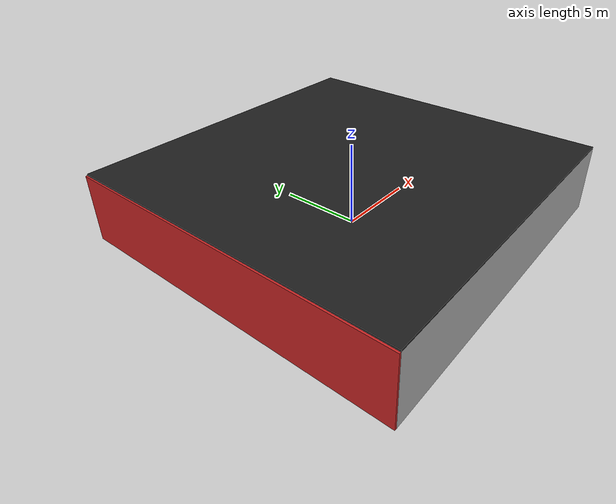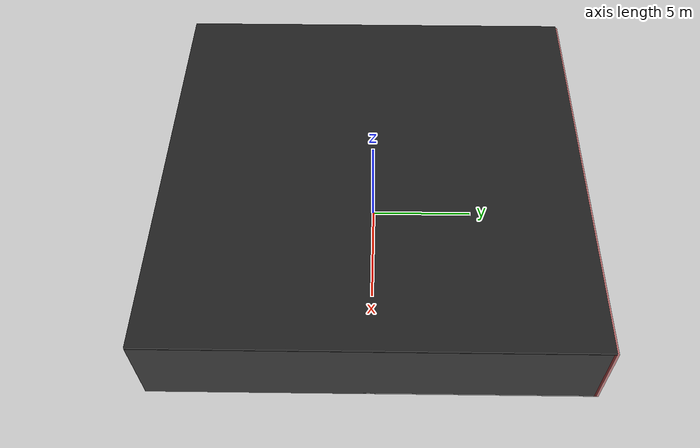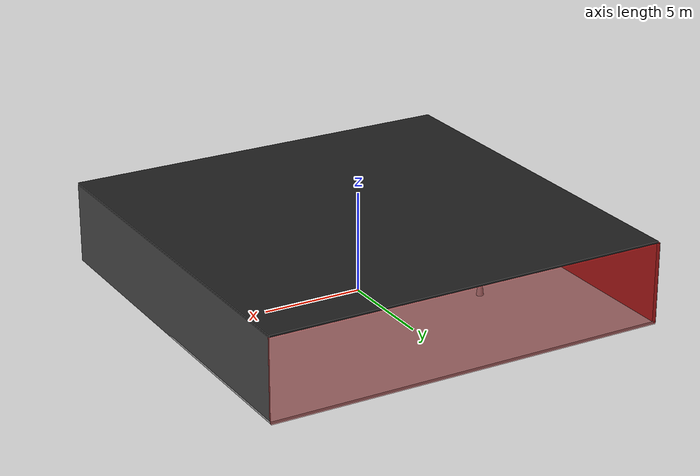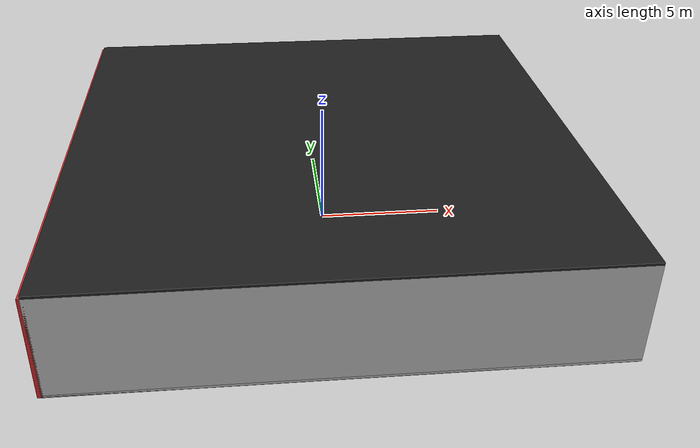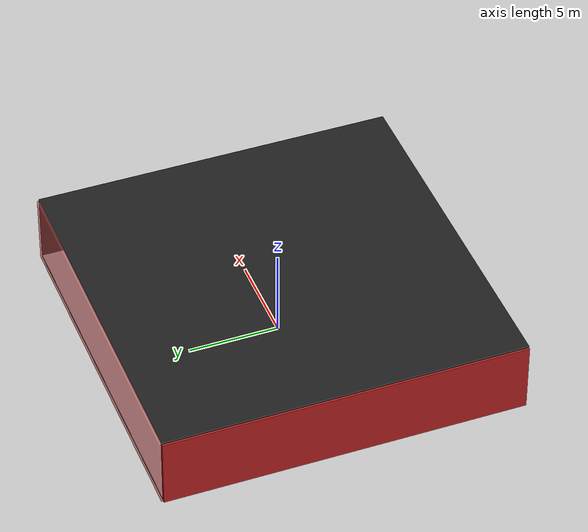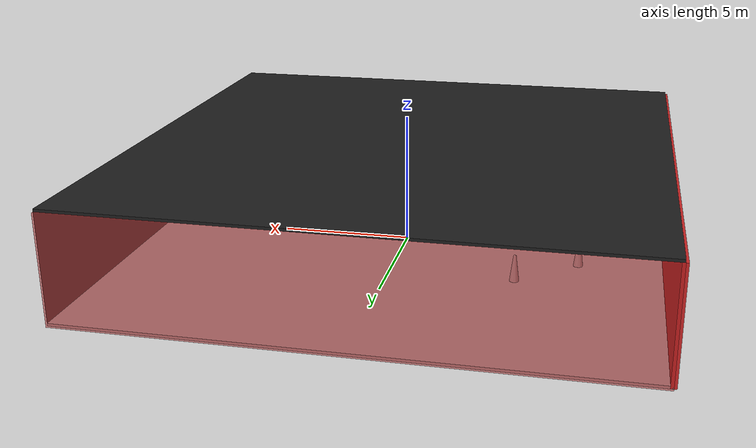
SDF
<sdf version="1.4">
 <world name="default">
  <physics type="ode">
   <max_step_size>0.001</max_step_size>
   <real_time_factor>1</real_time_factor>
   <real_time_update_rate>1000</real_time_update_rate>
   <gravity>0 0 -9.8</gravity>
  </physics>
  <scene><ambient>0.4 0.4 0.4 1</ambient><background>0.7 0.7 0.7 1</background><shadows>1</shadows></scene>
  <model name="Surrounding">
   <static>1</static>
   <link name="Ceiling">
    <collision name="Ceiling_Collision"><geometry><box><size>20 20 0.1</size></box></geometry></collision>
    <visual name="Ceiling_Visual">
     <geometry><box><size>20 20 0.1</size></box></geometry>
     <material>
      <script><uri>file://media/materials/scripts/gazebo.material</uri><name>Gazebo/Black</name></script>
     </material>
    </visual>
    <pose>0 0 4.05 0 0 0</pose>
   </link>
   <link name="Wall_South">
    <collision name="Wall_South_Collision">
     <geometry><box><size>20 0 4</size></box></geometry>
     <pose>0 0 2 0 -0 0</pose>
    </collision>
    <visual name="Wall_South_Visual">
     <pose>0 0 2 0 -0 0</pose>
     <geometry><box><size>20 0 4</size></box></geometry>
     <material>
      <script><uri>file://media/materials/scripts/gazebo.material</uri><name>Gazebo/CloudySky</name></script>
     </material>
    </visual>
    <velocity_decay><linear>0</linear><angular>0</angular></velocity_decay>
    <pose>0 -10 0 0 -0 0</pose>
   </link>
   <link name="Wall_East">
    <collision name="Wall_21_Collision">
     <geometry><box><size>20 0 4</size></box></geometry>
     <pose>0 0 2 0 -0 0</pose>
    </collision>
    <visual name="Wall_21_Visual">
     <pose>0 0 2 0 -0 0</pose>
     <geometry><box><size>20 0 4</size></box></geometry>
     <material>
      <script><uri>file://media/materials/scripts/gazebo.material</uri><name>Gazebo/Road</name></script>
     </material>
    </visual>
    <velocity_decay><linear>0</linear><angular>0</angular></velocity_decay>
    <pose>10 0 0 0 -0 1.5708</pose>
   </link>
   <link name="Wall_North">
    <collision name="Wall_22_Collision">
     <geometry><box><size>20 0.2 4</size></box></geometry>
     <pose>0 0 2 0 -0 0</pose>
    </collision>
    <visual name="Wall_22_Visual">
     <pose>0 0 2 0 -0 0</pose>
     <geometry><box><size>20 0.2 4</size></box></geometry>
     <material>
      <script><uri>file://media/materials/scripts/gazebo.material</uri><name>Gazebo/RedTransparent</name></script>
     </material>
    </visual>
    <velocity_decay><linear>0</linear><angular>0</angular></velocity_decay>
    <pose>0 10 0 0 -0 0</pose>
   </link>
   <link name="Wall_West">
    <collision name="Wall_23_Collision">
     <geometry><box><size>20 0.2 4</size></box></geometry>
     <pose>0 0 2 0 -0 0</pose>
    </collision>
    <visual name="Wall_23_Visual">
     <pose>0 0 2 0 -0 0</pose>
     <geometry><box><size>20 0.2 4</size></box></geometry>
     <material>
      <script><uri>file://media/materials/scripts/gazebo.material</uri><name>Gazebo/RedGlow</name></script>
     </material>
    </visual>
    <velocity_decay><linear>0</linear><angular>0</angular></velocity_decay>
    <pose>-10 0 0 0 0 -1.5708</pose>
   </link>
   <link name="Ground_link">
    <collision name="collision">
     <pose>0 0 .05 0 -0 0</pose>
     <geometry><box><size>20 20 0.1</size></box></geometry>
    </collision>
    <visual name="visual">
     <pose>0 0 .05 0 -0 0</pose>
     <geometry><box><size>20 20 0.1</size></box></geometry>
     <material>
      <script><uri>file://media/materials/scripts/gazebo.material</uri><name>Gazebo/CloudySky</name></script>
     </material>
    </visual>
   </link>
   <static>1</static>
  </model>
  <spherical_coordinates>
   <surface_model>EARTH_WGS84</surface_model>
   <latitude_deg>0</latitude_deg>
   <longitude_deg>0</longitude_deg>
   <elevation>0</elevation>
   <heading_deg>0</heading_deg>
  </spherical_coordinates>
  <light name="lightball_0" type="diffuse">
   <diffuse>0.8 0.8 0.8 1</diffuse>
   <specular>0.2 0.2 0.2 1</specular>
   <attenuation>
    <range>100</range>
    <constant>0.7</constant>
    <linear>0.01</linear>
    <quadratic>0.001</quadratic>
   </attenuation>
   <direction>-0.5 0.1 -0.9</direction>
   <pose>-5.15535487486 7.94258639405 2.34866198588 0 0 0</pose>
  </light>
  <light name="lightball_1" type="diffuse">
   <diffuse>0.8 0.8 0.8 1</diffuse>
   <specular>0.2 0.2 0.2 1</specular>
   <attenuation>
    <range>100</range>
    <constant>0.7</constant>
    <linear>0.01</linear>
    <quadratic>0.001</quadratic>
   </attenuation>
   <direction>-0.5 0.1 -0.9</direction>
   <pose>9.34947452503 9.01438978584 2.15628171915 0 0 0</pose>
  </light>
  <light name="lightball_2" type="diffuse">
   <diffuse>0.8 0.8 0.8 1</diffuse>
   <specular>0.2 0.2 0.2 1</specular>
   <attenuation>
    <range>100</range>
    <constant>0.7</constant>
    <linear>0.01</linear>
    <quadratic>0.001</quadratic>
   </attenuation>
   <direction>-0.5 0.1 -0.9</direction>
   <pose>-4.64600780072 -9.24779956371 3.57437457082 0 0 0</pose>
  </light>
  <light name="lightball_3" type="diffuse">
   <diffuse>0.8 0.8 0.8 1</diffuse>
   <specular>0.2 0.2 0.2 1</specular>
   <attenuation>
    <range>100</range>
    <constant>0.7</constant>
    <linear>0.01</linear>
    <quadratic>0.001</quadratic>
   </attenuation>
   <direction>-0.5 0.1 -0.9</direction>
   <pose>9.87627411527 3.49834569116 2.99779971917 0 0 0</pose>
  </light>
  <light name="lightball_4" type="diffuse">
   <diffuse>0.8 0.8 0.8 1</diffuse>
   <specular>0.2 0.2 0.2 1</specular>
   <attenuation>
    <range>100</range>
    <constant>0.7</constant>
    <linear>0.01</linear>
    <quadratic>0.001</quadratic>
   </attenuation>
   <direction>-0.5 0.1 -0.9</direction>
   <pose>-6.64981476229 -7.05015248947 3.6716180409 0 0 0</pose>
  </light>
  <include>
   <uri>model://construction_cone</uri>
   <pose>-6.82479960846 1.65151664665 0 0 0 2.61432839842</pose>
  </include>
  <include>
   <uri>model://robocup_3Dsim_goal</uri>
   <pose>-3.64687975694 -8.13460036757 0 0 0 2.67687040008</pose>
  </include>
  <include>
   <uri>model://construction_cone</uri>
   <pose>-4.6425877196 3.49395213879 0 0 0 3.08622979753</pose>
  </include>
  <include><uri>model://cabinet</uri><pose>0.667921887178 -6.93799238186 0 0 0 2.48989441166</pose></include>
  <include>
   <uri>model://textured_shapes</uri>
   <pose>1.68888784764 -2.63928427247 0 0 0 1.70396496791</pose>
  </include>
 </world>
</sdf>

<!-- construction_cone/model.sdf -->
<sdf version="1.5">
  <model name="Construction Cone">
    <link name="link">
      <collision name="collision">
        <geometry>
          <mesh>
            <scale>10 10 10</scale>
            <uri>file://isr-testbed/construction_cone/meshes/construction_cone.dae</uri>
          </mesh>
        </geometry>
      </collision>
      <visual name="visual">
        <geometry>
          <mesh>
            <scale>10 10 10</scale>
            <uri>file://isr-testbed/construction_cone/meshes/construction_cone.dae</uri>
          </mesh>
        </geometry>
      </visual>
    </link>
  </model>
</sdf>

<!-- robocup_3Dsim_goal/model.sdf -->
<sdf version="1.5">
  <model name="robocup_3d_goal">
    <static>true</static>
    <link name="left_post">
      <pose>0 1.05 0.45 0 0 0</pose>
      <collision name="collision">
        <geometry>
          <cylinder>
            <radius>0.05</radius>
            <length>0.9</length>
          </cylinder>
        </geometry>
      </collision>
      <visual name="visual">
        <geometry>
          <cylinder>
            <radius>0.05</radius>
            <length>0.9</length>
          </cylinder>
        </geometry>
        <material>
          <script>
            <uri>file://media/materials/scripts/gazebo.material</uri>
            <name>Gazebo/ZincYellow</name>
          </script>
        </material>
      </visual>
    </link>
    <link name="left_support_horiz_lower">
      <pose>0.30 1.05 0.01 0 0 0</pose>
      <collision name="collision">
        <geometry>
          <box>
            <size>0.50 0.02 0.02</size>
          </box>
        </geometry>
      </collision>
      <visual name="visual">
        <geometry>
          <box>
            <size>0.50 0.02 0.02</size>
          </box>
        </geometry>
        <material>
          <script>
            <uri>file://media/materials/scripts/gazebo.material</uri>
            <name>Gazebo/White</name>
          </script>
        </material>
      </visual>
    </link>
    <link name="left_support_horiz_upper">
      <pose>0.30 1.05 0.79 0 0 0</pose>
      <collision name="collision">
        <geometry>
          <box>
            <size>0.50 0.02 0.02</size>
          </box>
        </geometry>
      </collision>
      <visual name="visual">
        <geometry>
          <box>
            <size>0.50 0.02 0.02</size>
          </box>
        </geometry>
        <material>
          <script>
            <uri>file://media/materials/scripts/gazebo.material</uri>
            <name>Gazebo/White</name>
          </script>
        </material>
      </visual>
    </link>
    <link name="left_support_vertical">
      <pose>0.56 1.05 0.4 0 1.5708 0</pose>
      <collision name="collision">
        <geometry>
          <box>
            <size>0.80 0.02 0.02</size>
          </box>
        </geometry>
      </collision>
      <visual name="visual">
        <geometry>
          <box>
            <size>0.80 0.02 0.02</size>
          </box>
        </geometry>
        <material>
          <script>
            <uri>file://media/materials/scripts/gazebo.material</uri>
            <name>Gazebo/White</name>
          </script>
        </material>
      </visual>
    </link>
    <link name="right_support_horiz_lower">
      <pose>0.30 -1.05 0.01 0 0 0</pose>
      <collision name="collision">
        <geometry>
          <box>
            <size>0.50 0.02 0.02</size>
          </box>
        </geometry>
      </collision>
      <visual name="visual">
        <geometry>
          <box>
            <size>0.50 0.02 0.02</size>
          </box>
        </geometry>
        <material>
          <script>
            <uri>file://media/materials/scripts/gazebo.material</uri>
            <name>Gazebo/White</name>
          </script>
        </material>
      </visual>
    </link>
    <link name="right_support_horiz_upper">
      <pose>0.30 -1.05 0.79 0 0 0</pose>
      <collision name="collision">
        <geometry>
          <box>
            <size>0.50 0.02 0.02</size>
          </box>
        </geometry>
      </collision>
      <visual name="visual">
        <geometry>
          <box>
            <size>0.50 0.02 0.02</size>
          </box>
        </geometry>
        <material>
          <script>
            <uri>file://media/materials/scripts/gazebo.material</uri>
            <name>Gazebo/White</name>
          </script>
        </material>
      </visual>
    </link>
    <link name="right_support_vertical">
      <pose>0.56 -1.05 0.4 0 1.5708 0</pose>
      <collision name="collision">
        <geometry>
          <box>
            <size>0.80 0.02 0.02</size>
          </box>
        </geometry>
      </collision>
      <visual name="visual">
        <geometry>
          <box>
            <size>0.80 0.02 0.02</size>
          </box>
        </geometry>
        <material>
          <script>
            <uri>file://media/materials/scripts/gazebo.material</uri>
            <name>Gazebo/White</name>
          </script>
        </material>
      </visual>
    </link>
    <link name="center_support_horiz_lower">
      <pose>0.56 0 0.01 0 1.5708 0</pose>
      <collision name="collision">
        <geometry>
          <box>
            <size>0.02 2.08 0.02</size>
          </box>
        </geometry>
      </collision>
      <visual name="visual">
        <geometry>
          <box>
            <size>0.02 2.08 0.02</size>
          </box>
        </geometry>
        <material>
          <script>
            <uri>file://media/materials/scripts/gazebo.material</uri>
            <name>Gazebo/White</name>
          </script>
        </material>
      </visual>
    </link>
    <link name="center_support_horiz_upper">
      <pose>0.56 0 0.79 0 1.5708 0</pose>
      <collision name="collision">
        <geometry>
          <box>
            <size>0.02 2.08 0.02</size>
          </box>
        </geometry>
      </collision>
      <visual name="visual">
        <geometry>
          <box>
            <size>0.02 2.08 0.02</size>
          </box>
        </geometry>
        <material>
          <script>
            <uri>file://media/materials/scripts/gazebo.material</uri>
            <name>Gazebo/White</name>
          </script>
        </material>
      </visual>
    </link>
    <link name="right_post">
      <pose>0 -1.05 0.45 0 0 0</pose>
      <collision name="collision">
        <geometry>
          <cylinder>
            <radius>0.05</radius>
            <length>0.9</length>
          </cylinder>
        </geometry>
      </collision>
      <visual name="visual">
        <geometry>
          <cylinder>
            <radius>0.05</radius>
            <length>0.9</length>
          </cylinder>
        </geometry>
        <material>
          <script>
            <uri>file://media/materials/scripts/gazebo.material</uri>
            <name>Gazebo/ZincYellow</name>
          </script>
        </material>
      </visual>
    </link>
    <link name="crossbar">
      <pose>0 0 0.85 1.57 1.57 0</pose>
      <collision name="collision">
        <geometry>
          <cylinder>
            <radius>0.05</radius>
            <length>2.0</length>
          </cylinder>
        </geometry>
      </collision>
      <visual name="visual">
        <geometry>
          <cylinder>
            <radius>0.05</radius>
            <length>2.0</length>
          </cylinder>
        </geometry>
        <material>
          <script>
            <uri>file://media/materials/scripts/gazebo.material</uri>
            <name>Gazebo/ZincYellow</name>
          </script>
        </material>
      </visual>
    </link>
    <link name="center_net">
      <pose>0.56 0 0.40 0 0 0</pose>
      <collision name="collision">
        <geometry>
          <box>
            <size>0.01 2.1 0.80</size>
          </box>
        </geometry>
      </collision>
      <visual name="visual">
        <geometry>
          <box>
            <size>0.01 2.1 0.80</size>
          </box>
        </geometry>
        <material>
          <script>
            <uri>model://../model_source/models/robocup09_spl_field/materials/scripts/</uri>
            <uri>model://../model_source/models/robocup09_spl_field/materials/textures/</uri>
            <name>RoboCup/Net</name>
          </script>
        </material>
      </visual>
    </link>
    <link name="left_net">
      <pose>0.30 1.05 0.40 0 0 0</pose>
      <collision name="collision">
        <geometry>
          <box>
            <size>0.50 0.01 0.76</size>
          </box>
        </geometry>
      </collision>
      <visual name="visual">
        <geometry>
          <box>
            <size>0.50 0.01 0.76</size>
          </box>
        </geometry>
        <material>
          <script>
            <uri>model://../model_source/models/robocup09_spl_field/materials/scripts/</uri>
            <uri>model://../model_source/models/robocup09_spl_field/materials/textures/</uri>
            <name>RoboCup/Net</name>
          </script>
        </material>
      </visual>
    </link>
    <link name="right_net">
      <pose>0.30 -1.05 0.40 0 0 0</pose>
      <collision name="collision">
        <geometry>
          <box>
            <size>0.50 0.01 0.76</size>
          </box>
        </geometry>
      </collision>
      <visual name="visual">
        <geometry>
          <box>
            <size>0.50 0.01 0.76</size>
          </box>
        </geometry>
        <material>
          <script>
            <uri>model://../model_source/models/robocup09_spl_field/materials/scripts/</uri>
            <uri>model://../model_source/models/robocup09_spl_field/materials/textures/</uri>
            <name>RoboCup/Net</name>
          </script>
        </material>
      </visual>
    </link>
  </model>
</sdf>

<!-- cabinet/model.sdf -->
<sdf version="1.5">
  <model name="cabinet">
    <static>true</static>
    <link name="cabinet_bottom_plate">
      <inertial>
        <pose>0 0 -1 0 0 0</pose>
        <inertia>
          <ixx>2.050000</ixx>
          <ixy>0</ixy>
          <ixz>0</ixz>
          <iyy>2.050000</iyy>
          <iyz>0</iyz>
          <izz>2.050000</izz>
        </inertia>
        <mass>25.000000</mass>
      </inertial>
      <collision name="cabinet_bottom_plate_geom">
        <pose>0 0 0.010000 0 0 0</pose>
        <geometry>
          <box>
            <size>0.450000 0.450000 0.020000</size>
          </box>
        </geometry>
      </collision>
      <visual name="cabinet_bottom_plate_geom_visual">
        <pose>0 0 0.010000 0 0 0</pose>
        <geometry>
          <box>
            <size>0.450000 0.450000 0.020000</size>
          </box>
        </geometry>
        <material>
          <script>
            <uri>model://media/materials/scripts/gazebo.material</uri>
            <name>Gazebo/Wood</name>
          </script>
        </material>
      </visual>
      <collision name="cabinet_bottom_plate_geom_cabinet_back_plate">
        <pose>0.235000 0 0.510000 0 0 0</pose>
        <geometry>
          <box>
            <size>0.020000 0.450000 1.020000</size>
          </box>
        </geometry>
      </collision>
      <visual name="cabinet_bottom_plate_geom_cabinet_back_plate_visual">
        <pose>0.235000 0 0.510000 0 0 0</pose>
        <geometry>
          <box>
            <size>0.020000 0.450000 1.020000</size>
          </box>
        </geometry>
        <material>
          <script>
            <uri>model://media/materials/scripts/gazebo.material</uri>
            <name>Gazebo/Wood</name>
          </script>
        </material>
      </visual>
      <collision name="cabinet_bottom_plate_geom_cabinet_left_plate">
        <pose>0 0.235000 0.510000 0 0 0</pose>
        <geometry>
          <box>
            <size>0.450000 0.020000 1.020000</size>
          </box>
        </geometry>
      </collision>
      <visual name="cabinet_bottom_plate_geom_cabinet_left_plate_visual">
        <pose>0 0.235000 0.510000 0 0 0</pose>
        <geometry>
          <box>
            <size>0.450000 0.020000 1.020000</size>
          </box>
        </geometry>
        <material>
          <script>
            <uri>model://media/materials/scripts/gazebo.material</uri>
            <name>Gazebo/Wood</name>
          </script>
        </material>
      </visual>
      <collision name="cabinet_bottom_plate_geom_cabinet_middle_plate">
        <pose>0 0 0.510000 0 0 0</pose>
        <geometry>
          <box>
            <size>0.450000 0.450000 0.020000</size>
          </box>
        </geometry>
      </collision>
      <visual name="cabinet_bottom_plate_geom_cabinet_middle_plate_visual">
        <pose>0 0 0.510000 0 0 0</pose>
        <geometry>
          <box>
            <size>0.450000 0.450000 0.020000</size>
          </box>
        </geometry>
        <material>
          <script>
            <uri>model://media/materials/scripts/gazebo.material</uri>
            <name>Gazebo/Wood</name>
          </script>
        </material>
      </visual>
      <collision name="cabinet_bottom_plate_geom_cabinet_right_plate">
        <pose>0 -0.235000 0.510000 0 0 0</pose>
        <geometry>
          <box>
            <size>0.450000 0.020000 1.020000</size>
          </box>
        </geometry>
      </collision>
      <visual name="cabinet_bottom_plate_geom_cabinet_right_plate_visual">
        <pose>0 -0.235000 0.510000 0 0 0</pose>
        <geometry>
          <box>
            <size>0.450000 0.020000 1.020000</size>
          </box>
        </geometry>
        <material>
          <script>
            <uri>model://media/materials/scripts/gazebo.material</uri>
            <name>Gazebo/Wood</name>
          </script>
        </material>
      </visual>
      <collision name="cabinet_bottom_plate_geom_cabinet_top_plate">
        <pose>0 0 1.010000 0 0 0</pose>
        <geometry>
          <box>
            <size>0.450000 0.450000 0.020000</size>
          </box>
        </geometry>
      </collision>
      <visual name="cabinet_bottom_plate_geom_cabinet_top_plate_visual">
        <pose>0 0 1.010000 0 0 0</pose>
        <geometry>
          <box>
            <size>0.450000 0.450000 0.020000</size>
          </box>
        </geometry>
        <material>
          <script>
            <uri>model://media/materials/scripts/gazebo.material</uri>
            <name>Gazebo/Wood</name>
          </script>
        </material>
      </visual>
    </link>
  </model>
</sdf>

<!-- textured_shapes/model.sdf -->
<sdf version="1.6">
  <model name="textured_shapes">
    <pose>0 0 0.5 0 0 0</pose>
    <link name="box">
      <pose>0 -1.5 0 0 0 0</pose>
      <collision name="collision">
        <geometry>
          <box>
            <size>1 1 1</size>
          </box>
        </geometry>
      </collision>
      <visual name="visual">
        <geometry>
          <box>
            <size>1 1 1</size>
          </box>
        </geometry>
        <material>
          <script>
            <uri>model://../model_source/models/textured_shapes/materials/scripts</uri>
            <uri>model://../model_source/models/textured_shapes/materials/textures</uri>
            <name>TexturedShape/Squares</name>
          </script>
        </material>
      </visual>
    </link>
    <link name="sphere">
      <collision name="collision">
        <geometry>
          <sphere>
            <radius>0.5</radius>
          </sphere>
        </geometry>
      </collision>
      <visual name="visual">
        <geometry>
          <sphere>
            <radius>0.5</radius>
          </sphere>
        </geometry>
        <material>
          <script>
            <uri>model://../model_source/models/textured_shapes/materials/scripts</uri>
            <uri>model://../model_source/models/textured_shapes/materials/textures</uri>
            <name>TexturedShape/Squares</name>
          </script>
        </material>
      </visual>
    </link>
    <link name="cylinder">
      <pose>0 1.5 0 0 0 0</pose>
      <collision name="collision">
        <geometry>
          <cylinder>
            <radius>0.5</radius>
            <length>1</length>
          </cylinder>
        </geometry>
      </collision>
      <visual name="visual">
        <geometry>
          <cylinder>
            <radius>0.5</radius>
            <length>1</length>
          </cylinder>
        </geometry>
        <material>
          <script>
            <uri>model://../model_source/models/textured_shapes/materials/scripts</uri>
            <uri>model://../model_source/models/textured_shapes/materials/textures</uri>
            <name>TexturedShape/Squares</name>
          </script>
        </material>
      </visual>
    </link>
  </model>
</sdf>
